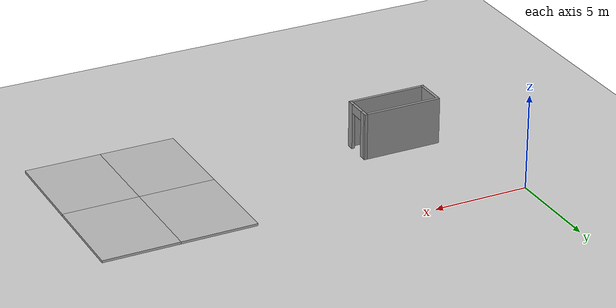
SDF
<sdf version="1.6">
 <world name="default">
  <model name="ground_plane">
   <static>1</static>
   <link name="link">
    <collision name="collision">
     <geometry><plane><normal>0 0 1</normal><size>1000 1000</size></plane></geometry>
     <surface>
      <contact><collide_bitmask>65535</collide_bitmask></contact>
      <friction><ode><mu>100</mu><mu2>50</mu2></ode></friction>
     </surface>
    </collision>
    <visual name="visual">
     <cast_shadows>0</cast_shadows>
     <geometry><plane><normal>0 0 1</normal><size>1000 1000</size></plane></geometry>
     <material>
      <script><uri>file://media/materials/scripts/gazebo.material</uri><name>Gazebo/Grey</name></script>
     </material>
    </visual>
   </link>
  </model>
  <model name="mybuild">
   <pose>3.5321 -7.00889 0 0 -0 0</pose>
   <link name="Wall_0">
    <collision name="Wall_0_Collision">
     <geometry><box><size>1.75 0.15 2.5</size></box></geometry>
     <pose>0 0 1.25 0 -0 0</pose>
    </collision>
    <visual name="Wall_0_Visual">
     <pose>0 0 1.25 0 -0 0</pose>
     <geometry><box><size>1.75 0.15 2.5</size></box></geometry>
     <material>
      <script><uri>file://media/materials/scripts/gazebo.material</uri><name>Gazebo/Grey</name></script>
      <ambient>1 1 1 1</ambient>
     </material>
     <meta><layer>0</layer></meta>
    </visual>
    <pose>-2.05 0 0 0 0 -1.5708</pose>
   </link>
   <link name="Wall_1">
    <collision name="Wall_1_Collision">
     <geometry><box><size>4.25 0.15 2.5</size></box></geometry>
     <pose>0 0 1.25 0 -0 0</pose>
    </collision>
    <visual name="Wall_1_Visual">
     <pose>0 0 1.25 0 -0 0</pose>
     <geometry><box><size>4.25 0.15 2.5</size></box></geometry>
     <material>
      <script><uri>file://media/materials/scripts/gazebo.material</uri><name>Gazebo/Grey</name></script>
      <ambient>1 1 1 1</ambient>
     </material>
     <meta><layer>0</layer></meta>
    </visual>
    <pose>0 -0.8 0 0 -0 0</pose>
   </link>
   <link name="Wall_2">
    <pose>2.05 0 0 0 -0 1.5708</pose>
    <visual name="Wall_2_Visual_0">
     <pose>-0.6775 0 1.25 0 -0 0</pose>
     <geometry><box><size>0.395 0.15 2.5</size></box></geometry>
     <material>
      <script><uri>file://media/materials/scripts/gazebo.material</uri><name>Gazebo/Grey</name></script>
      <ambient>1 1 1 1</ambient>
     </material>
     <meta><layer>0</layer></meta>
    </visual>
    <collision name="Wall_2_Collision_0">
     <geometry><box><size>0.395 0.15 2.5</size></box></geometry>
     <pose>-0.6775 0 1.25 0 -0 0</pose>
    </collision>
    <visual name="Wall_2_Visual_1">
     <pose>0.6475 0 1.25 0 -0 0</pose>
     <geometry><box><size>0.455 0.15 2.5</size></box></geometry>
     <material>
      <script><uri>file://media/materials/scripts/gazebo.material</uri><name>Gazebo/Grey</name></script>
      <ambient>1 1 1 1</ambient>
     </material>
     <meta><layer>0</layer></meta>
    </visual>
    <collision name="Wall_2_Collision_1">
     <geometry><box><size>0.455 0.15 2.5</size></box></geometry>
     <pose>0.6475 0 1.25 0 -0 0</pose>
    </collision>
    <visual name="Wall_2_Visual_2">
     <pose>-0.03 0 2.25 0 -0 0</pose>
     <geometry><box><size>0.9 0.15 0.5</size></box></geometry>
     <material>
      <script><uri>file://media/materials/scripts/gazebo.material</uri><name>Gazebo/Grey</name></script>
      <ambient>1 1 1 1</ambient>
     </material>
     <meta><layer>0</layer></meta>
    </visual>
    <collision name="Wall_2_Collision_2">
     <geometry><box><size>0.9 0.15 0.5</size></box></geometry>
     <pose>-0.03 0 2.25 0 -0 0</pose>
    </collision>
   </link>
   <link name="Wall_3">
    <collision name="Wall_3_Collision">
     <geometry><box><size>4.25 0.15 2.5</size></box></geometry>
     <pose>0 0 1.25 0 -0 0</pose>
    </collision>
    <visual name="Wall_3_Visual">
     <pose>0 0 1.25 0 -0 0</pose>
     <geometry><box><size>4.25 0.15 2.5</size></box></geometry>
     <material>
      <script><uri>file://media/materials/scripts/gazebo.material</uri><name>Gazebo/Grey</name></script>
      <ambient>1 1 1 1</ambient>
     </material>
     <meta><layer>0</layer></meta>
    </visual>
    <pose>0 0.8 0 0 -0 3.14159</pose>
   </link>
   <static>1</static>
  </model>
  <model name="mud_box">
   <static>1</static>
   <link name="link">
    <collision name="collision"><geometry><box><size>8 10 0.2</size></box></geometry></collision>
    <visual name="visual_1">
     <pose>-2 2.5 0 0 -0 0</pose>
     <cast_shadows>0</cast_shadows>
     <geometry><box><size>4 5 0.2</size></box></geometry>
     <material>
      <script>
       <uri>model://mud_box/materials/scripts</uri>
       <uri>model://mud_box/materials/textures</uri>
       <name>vrc/mud</name>
      </script>
     </material>
    </visual>
    <visual name="visual_2">
     <pose>2 2.5 0 0 -0 0</pose>
     <cast_shadows>0</cast_shadows>
     <geometry><box><size>4 5 0.2</size></box></geometry>
     <material>
      <script>
       <uri>model://mud_box/materials/scripts</uri>
       <uri>model://mud_box/materials/textures</uri>
       <name>vrc/mud</name>
      </script>
     </material>
    </visual>
    <visual name="visual_3">
     <pose>2 -2.5 0 0 -0 0</pose>
     <cast_shadows>0</cast_shadows>
     <geometry><box><size>4 5 0.2</size></box></geometry>
     <material>
      <script>
       <uri>model://mud_box/materials/scripts</uri>
       <uri>model://mud_box/materials/textures</uri>
       <name>vrc/mud</name>
      </script>
     </material>
    </visual>
    <visual name="visual_4">
     <pose>-2 -2.5 0 0 -0 0</pose>
     <cast_shadows>0</cast_shadows>
     <geometry><box><size>4 5 0.2</size></box></geometry>
     <material>
      <script>
       <uri>model://mud_box/materials/scripts</uri>
       <uri>model://mud_box/materials/textures</uri>
       <name>vrc/mud</name>
      </script>
     </material>
    </visual>
   </link>
   <pose>17.3275 -7.41164 0 0 -0 0</pose>
  </model>
 </world>
</sdf>
